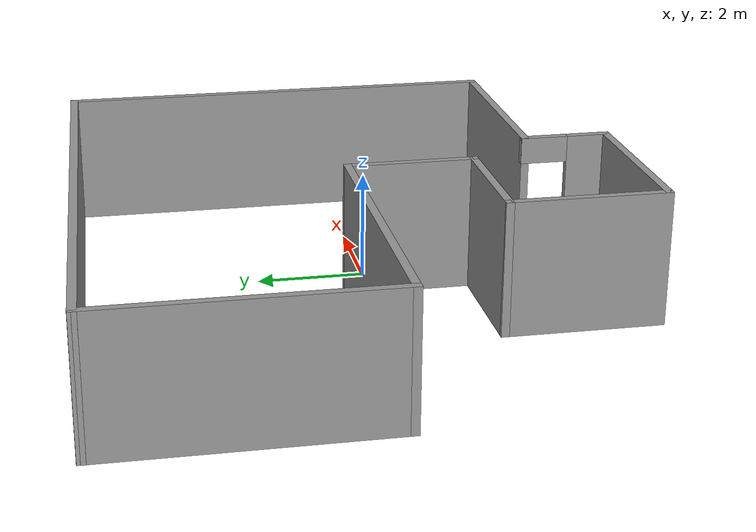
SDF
<?xml version='1.0'?>
<sdf version='1.6'>
  <model name='myworld'>
    <pose frame=''>-1.13313 0.391299 0 0 -0 0</pose>
    <link name='Wall_0'>
      <collision name='Wall_0_Collision'>
        <geometry>
          <box>
            <size>3 0.15 2.5</size>
          </box>
        </geometry>
        <pose frame=''>0 0 1.25 0 -0 0</pose>
      </collision>
      <visual name='Wall_0_Visual'>
        <pose frame=''>0 0 1.25 0 -0 0</pose>
        <geometry>
          <box>
            <size>3 0.15 2.5</size>
          </box>
        </geometry>
        <material>
          <script>
            <uri>file://media/materials/scripts/gazebo.material</uri>
            <name>Gazebo/Grey</name>
          </script>
          <ambient>1 1 1 1</ambient>
        </material>
        <meta>
          <layer>0</layer>
        </meta>
      </visual>
      <pose frame=''>-2.02687 -3.7263 0 0 0 -1.5708</pose>
    </link>
    <link name='Wall_1'>
      <collision name='Wall_1_Collision'>
        <geometry>
          <box>
            <size>3.5 0.15 2.5</size>
          </box>
        </geometry>
        <pose frame=''>0 0 1.25 0 -0 0</pose>
      </collision>
      <visual name='Wall_1_Visual'>
        <pose frame=''>0 0 1.25 0 -0 0</pose>
        <geometry>
          <box>
            <size>3.5 0.15 2.5</size>
          </box>
        </geometry>
        <material>
          <script>
            <uri>file://media/materials/scripts/gazebo.material</uri>
            <name>Gazebo/Grey</name>
          </script>
          <ambient>1 1 1 1</ambient>
        </material>
        <meta>
          <layer>0</layer>
        </meta>
      </visual>
      <pose frame=''>-0.351869 -5.1513 0 0 -0 0</pose>
    </link>
    <link name='Wall_14'>
      <collision name='Wall_14_Collision'>
        <geometry>
          <box>
            <size>4 0.15 2.5</size>
          </box>
        </geometry>
        <pose frame=''>0 0 1.25 0 -0 0</pose>
      </collision>
      <visual name='Wall_14_Visual'>
        <pose frame=''>0 0 1.25 0 -0 0</pose>
        <geometry>
          <box>
            <size>4 0.15 2.5</size>
          </box>
        </geometry>
        <material>
          <script>
            <uri>file://media/materials/scripts/gazebo.material</uri>
            <name>Gazebo/Grey</name>
          </script>
          <ambient>1 1 1 1</ambient>
        </material>
        <meta>
          <layer>0</layer>
        </meta>
      </visual>
      <pose frame=''>3.24813 -3.5513 0 0 -0 0</pose>
    </link>
    <link name='Wall_2'>
      <pose frame=''>1.32313 -4.3513 0 0 -0 1.5708</pose>
      <visual name='Wall_2_Visual_0'>
        <pose frame=''>-0.448457 0 1.25 0 -0 0</pose>
        <geometry>
          <box>
            <size>0.853085 0.15 2.5</size>
          </box>
        </geometry>
        <material>
          <script>
            <uri>file://media/materials/scripts/gazebo.material</uri>
            <name>Gazebo/Grey</name>
          </script>
          <ambient>1 1 1 1</ambient>
        </material>
        <meta>
          <layer>0</layer>
        </meta>
      </visual>
      <collision name='Wall_2_Collision_0'>
        <geometry>
          <box>
            <size>0.853085 0.15 2.5</size>
          </box>
        </geometry>
        <pose frame=''>-0.448457 0 1.25 0 -0 0</pose>
      </collision>
      <visual name='Wall_2_Visual_1'>
        <pose frame=''>0.426543 0 2.25 0 -0 0</pose>
        <geometry>
          <box>
            <size>0.896915 0.15 0.5</size>
          </box>
        </geometry>
        <material>
          <script>
            <uri>file://media/materials/scripts/gazebo.material</uri>
            <name>Gazebo/Grey</name>
          </script>
          <ambient>1 1 1 1</ambient>
        </material>
        <meta>
          <layer>0</layer>
        </meta>
      </visual>
      <collision name='Wall_2_Collision_1'>
        <geometry>
          <box>
            <size>0.896915 0.15 0.5</size>
          </box>
        </geometry>
        <pose frame=''>0.426543 0 2.25 0 -0 0</pose>
      </collision>
    </link>
    <link name='Wall_4'>
      <collision name='Wall_4_Collision'>
        <geometry>
          <box>
            <size>2.5 0.15 2.5</size>
          </box>
        </geometry>
        <pose frame=''>0 0 1.25 0 -0 0</pose>
      </collision>
      <visual name='Wall_4_Visual'>
        <pose frame=''>0 0 1.25 0 -0 0</pose>
        <geometry>
          <box>
            <size>2.5 0.15 2.5</size>
          </box>
        </geometry>
        <material>
          <script>
            <uri>file://media/materials/scripts/gazebo.material</uri>
            <name>Gazebo/Grey</name>
          </script>
          <ambient>1 1 1 1</ambient>
        </material>
        <meta>
          <layer>0</layer>
        </meta>
      </visual>
      <pose frame=''>-0.851869 -2.3013 0 0 -0 0</pose>
    </link>
    <link name='Wall_5'>
      <collision name='Wall_5_Collision'>
        <geometry>
          <box>
            <size>2.5 0.15 2.5</size>
          </box>
        </geometry>
        <pose frame=''>0 0 1.25 0 -0 0</pose>
      </collision>
      <visual name='Wall_5_Visual'>
        <pose frame=''>0 0 1.25 0 -0 0</pose>
        <geometry>
          <box>
            <size>2.5 0.15 2.5</size>
          </box>
        </geometry>
        <material>
          <script>
            <uri>file://media/materials/scripts/gazebo.material</uri>
            <name>Gazebo/Grey</name>
          </script>
          <ambient>1 1 1 1</ambient>
        </material>
        <meta>
          <layer>0</layer>
        </meta>
      </visual>
      <pose frame=''>0.323131 -1.1263 0 0 -0 1.5708</pose>
    </link>
    <link name='Wall_6'>
      <collision name='Wall_6_Collision'>
        <geometry>
          <box>
            <size>5.75 0.15 2.5</size>
          </box>
        </geometry>
        <pose frame=''>0 0 1.25 0 -0 0</pose>
      </collision>
      <visual name='Wall_6_Visual'>
        <pose frame=''>0 0 1.25 0 -0 0</pose>
        <geometry>
          <box>
            <size>5.75 0.15 2.5</size>
          </box>
        </geometry>
        <material>
          <script>
            <uri>file://media/materials/scripts/gazebo.material</uri>
            <name>Gazebo/Grey</name>
          </script>
          <ambient>1 1 1 1</ambient>
        </material>
        <meta>
          <layer>0</layer>
        </meta>
      </visual>
      <pose frame=''>-2.47687 0.048701 0 0 -0 3.14159</pose>
    </link>
    <link name='Wall_7'>
      <collision name='Wall_7_Collision'>
        <geometry>
          <box>
            <size>5.25 0.15 2.5</size>
          </box>
        </geometry>
        <pose frame=''>0 0 1.25 0 -0 0</pose>
      </collision>
      <visual name='Wall_7_Visual'>
        <pose frame=''>0 0 1.25 0 -0 0</pose>
        <geometry>
          <box>
            <size>5.25 0.15 2.5</size>
          </box>
        </geometry>
        <material>
          <script>
            <uri>file://media/materials/scripts/gazebo.material</uri>
            <name>Gazebo/Grey</name>
          </script>
          <ambient>1 1 1 1</ambient>
        </material>
        <meta>
          <layer>0</layer>
        </meta>
      </visual>
      <pose frame=''>-5.27687 2.5987 0 0 -0 1.5708</pose>
    </link>
    <link name='Wall_8'>
      <collision name='Wall_8_Collision'>
        <geometry>
          <box>
            <size>10.7111 0.15 2.5</size>
          </box>
        </geometry>
        <pose frame=''>0 0 1.25 0 -0 0</pose>
      </collision>
      <visual name='Wall_8_Visual'>
        <pose frame=''>0 0 1.25 0 -0 0</pose>
        <geometry>
          <box>
            <size>10.7111 0.15 2.5</size>
          </box>
        </geometry>
        <material>
          <script>
            <uri>file://media/materials/scripts/gazebo.material</uri>
            <name>Gazebo/Grey</name>
          </script>
          <ambient>1 1 1 1</ambient>
        </material>
        <meta>
          <layer>0</layer>
        </meta>
      </visual>
      <pose frame=''>0 4.96366 0 0 0 -0.035053</pose>
    </link>
    <link name='Wall_9'>
      <collision name='Wall_9_Collision'>
        <geometry>
          <box>
            <size>8.45374 0.15 2.5</size>
          </box>
        </geometry>
        <pose frame=''>0 0 1.25 0 -0 0</pose>
      </collision>
      <visual name='Wall_9_Visual'>
        <pose frame=''>0 0 1.25 0 -0 0</pose>
        <geometry>
          <box>
            <size>8.45374 0.15 2.5</size>
          </box>
        </geometry>
        <material>
          <script>
            <uri>file://media/materials/scripts/gazebo.material</uri>
            <name>Gazebo/Grey</name>
          </script>
          <ambient>1 1 1 1</ambient>
        </material>
        <meta>
          <layer>0</layer>
        </meta>
      </visual>
      <pose frame=''>5.27687 0.603612 0 0 0 -1.5708</pose>
    </link>
    <static>1</static>
  </model>
</sdf>
